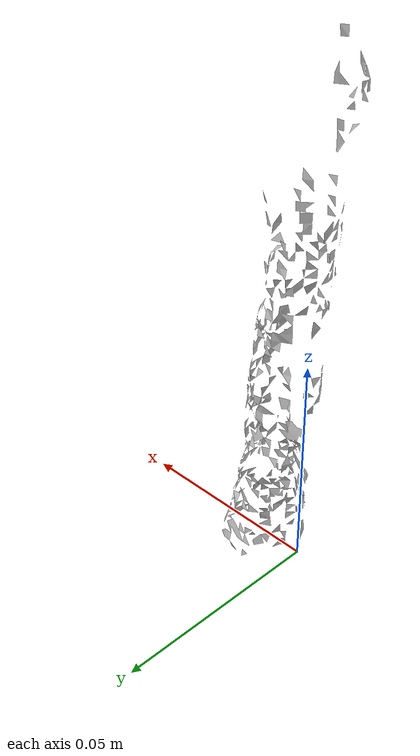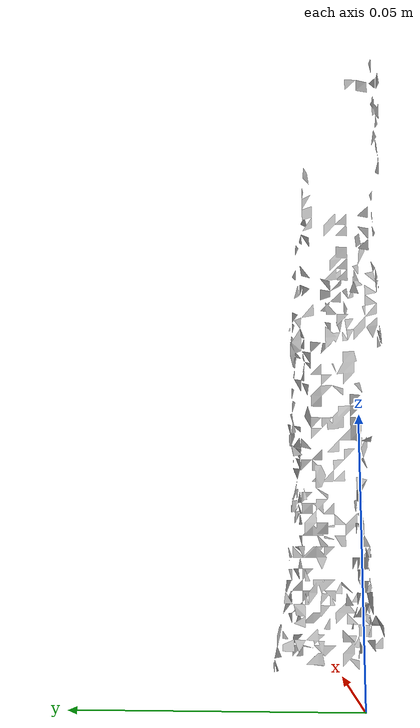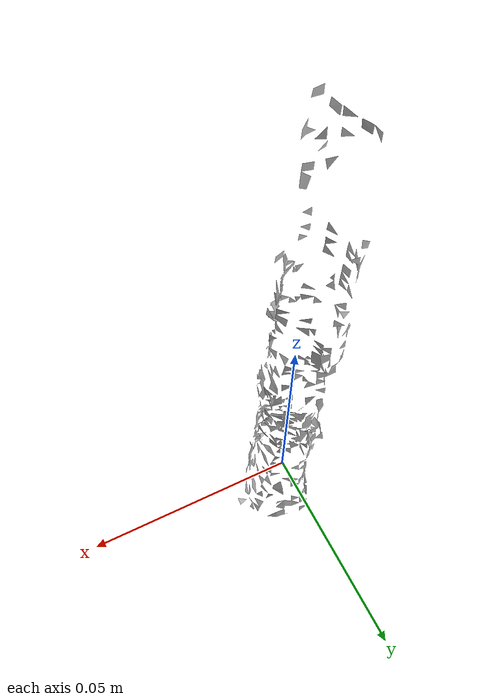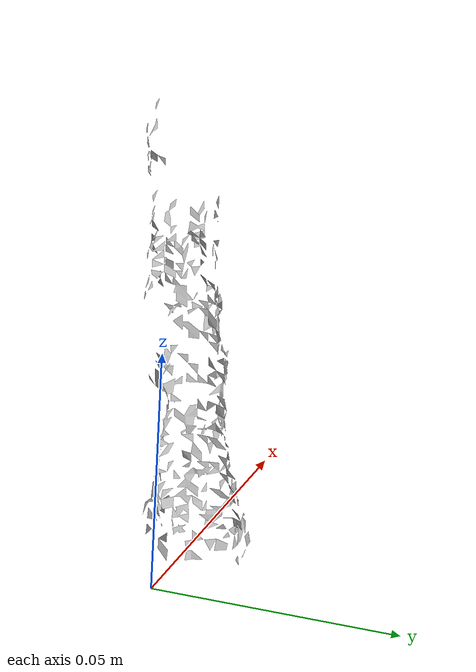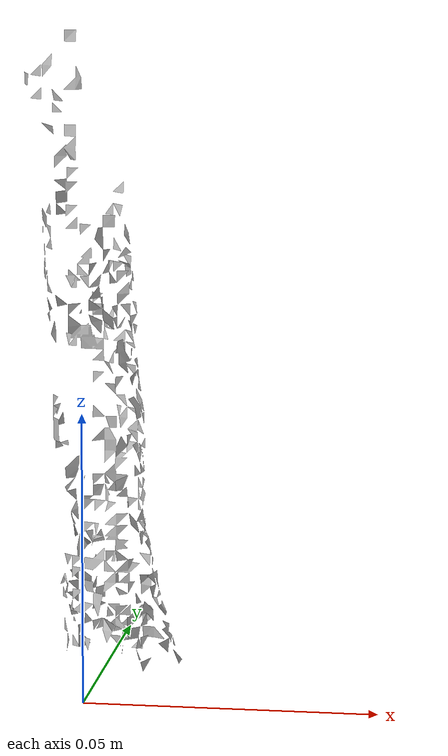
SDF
<?xml version='1.0'?>
<sdf version="1.4">
  <model name="small_marker">
    <static>false</static>
    <link name="link">
      <inertial>
        <pose>0.0032001725193334116 0.004681558579172993 0.006391496436420896 -0.02021127731455286 -0.6276743800198084 -1.9393642873010546</pose>
        <mass>9.949254477471e-06</mass>
        <inertia>
          <ixx>2.4084715561816797e-09</ixx>
          <ixy>-3.111375619771522e-26</ixy>
          <ixz>1.9804695704980209e-25</ixz>
          <iyy>1.3477104194998567e-09</iyy>
          <iyz>2.521483379384548e-25</iyz>
          <izz>-7.936753546759866e-10</izz>
        </inertia>
      </inertial>
      <collision name="collision">
        <geometry>
          <mesh>
            <!-- Use a downsampled mesh for collisions -->
            <uri>model://041_small_marker/downsampled.obj</uri>
	        </mesh>
        </geometry>
        <surface>
      </surface>
      </collision>
      <visual name="visual">
        <geometry>
          <mesh>
            <uri>model://041_small_marker/tsdf/textured.obj</uri>
	        </mesh>
        </geometry>
        <material>
          <script>
            <uri>model://041_small_marker/small_marker.material</uri>
            <name>small_marker</name>
          </script>
        </material>
      </visual>
    </link>
  </model>
</sdf>
